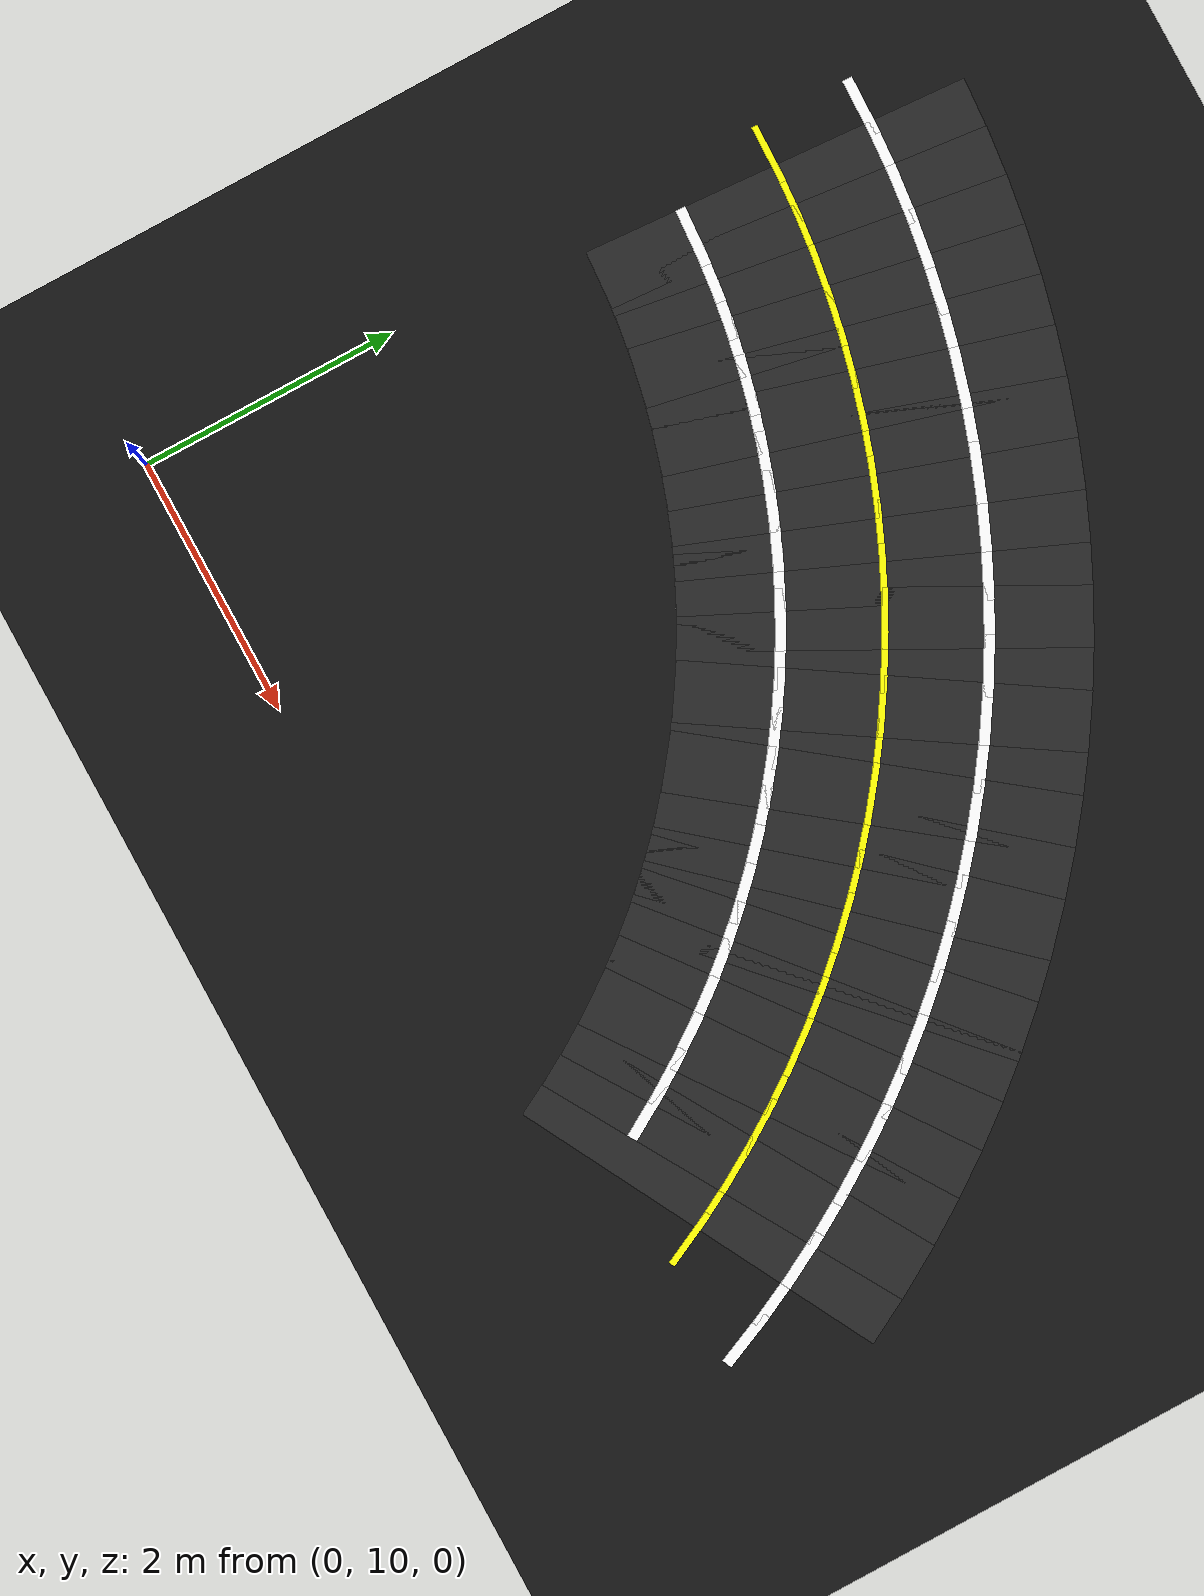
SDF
<sdf version="1.6">
 <world name="figure8_world">
  <model name="ground_plane">
   <static>true</static>
   <link name="link">
    <collision name="collision">
     <geometry><plane><normal>0 0 1</normal><size>100 100</size></plane></geometry>
    </collision>
    <visual name="visual">
     <geometry><plane><normal>0 0 1</normal><size>100 100</size></plane></geometry>
     <material><ambient>0.08 0.08 0.08 1</ambient><diffuse>0.08 0.08 0.08 1</diffuse></material>
    </visual>
   </link>
  </model>
  <model name="seg_00165">
   <static>true</static>
   <pose>7.5625 10.7972 0.0030 0 0 1.9819</pose>
   <link name="link">
    <collision name="collision"><geometry><box><size>0.4500 0.0800 0.002</size></box></geometry></collision>
    <visual name="visual">
     <geometry><box><size>0.4500 0.0800 0.002</size></box></geometry>
     <material><ambient>1 1 1 1</ambient><diffuse>1 1 1 1</diffuse></material>
    </visual>
   </link>
  </model>
  <model name="seg_00169">
   <static>true</static>
   <pose>7.4167 11.1131 0.0030 0 0 2.0241</pose>
   <link name="link">
    <collision name="collision"><geometry><box><size>0.4500 0.0800 0.002</size></box></geometry></collision>
    <visual name="visual">
     <geometry><box><size>0.4500 0.0800 0.002</size></box></geometry>
     <material><ambient>1 1 1 1</ambient><diffuse>1 1 1 1</diffuse></material>
    </visual>
   </link>
  </model>
  <model name="seg_00171">
   <static>true</static>
   <pose>6.7425 10.7846 0.0030 0 0 2.0241</pose>
   <link name="link">
    <collision name="collision"><geometry><box><size>0.4500 0.0500 0.002</size></box></geometry></collision>
    <visual name="visual">
     <geometry><box><size>0.4500 0.0500 0.002</size></box></geometry>
     <material><ambient>1 1 0 1</ambient><diffuse>1 1 0 1</diffuse></material>
    </visual>
   </link>
  </model>
  <model name="seg_00172">
   <static>true</static>
   <pose>6.5980 11.0659 0.0010 0 0 2.0663</pose>
   <link name="link">
    <collision name="collision"><geometry><box><size>0.4500 3.0000 0.002</size></box></geometry></collision>
    <visual name="visual">
     <geometry><box><size>0.4500 3.0000 0.002</size></box></geometry>
     <material><ambient>0.15 0.15 0.15 1</ambient><diffuse>0.15 0.15 0.15 1</diffuse></material>
    </visual>
   </link>
  </model>
  <model name="seg_00173">
   <static>true</static>
   <pose>7.2578 11.4225 0.0030 0 0 2.0663</pose>
   <link name="link">
    <collision name="collision"><geometry><box><size>0.4500 0.0800 0.002</size></box></geometry></collision>
    <visual name="visual">
     <geometry><box><size>0.4500 0.0800 0.002</size></box></geometry>
     <material><ambient>1 1 1 1</ambient><diffuse>1 1 1 1</diffuse></material>
    </visual>
   </link>
  </model>
  <model name="seg_00175">
   <static>true</static>
   <pose>6.5980 11.0659 0.0030 0 0 2.0663</pose>
   <link name="link">
    <collision name="collision"><geometry><box><size>0.4500 0.0500 0.002</size></box></geometry></collision>
    <visual name="visual">
     <geometry><box><size>0.4500 0.0500 0.002</size></box></geometry>
     <material><ambient>1 1 0 1</ambient><diffuse>1 1 0 1</diffuse></material>
    </visual>
   </link>
  </model>
  <model name="seg_00176">
   <static>true</static>
   <pose>6.4418 11.3409 0.0010 0 0 2.1085</pose>
   <link name="link">
    <collision name="collision"><geometry><box><size>0.4500 3.0000 0.002</size></box></geometry></collision>
    <visual name="visual">
     <geometry><box><size>0.4500 3.0000 0.002</size></box></geometry>
     <material><ambient>0.15 0.15 0.15 1</ambient><diffuse>0.15 0.15 0.15 1</diffuse></material>
    </visual>
   </link>
  </model>
  <model name="seg_00177">
   <static>true</static>
   <pose>7.0860 11.7250 0.0030 0 0 2.1085</pose>
   <link name="link">
    <collision name="collision"><geometry><box><size>0.4500 0.0800 0.002</size></box></geometry></collision>
    <visual name="visual">
     <geometry><box><size>0.4500 0.0800 0.002</size></box></geometry>
     <material><ambient>1 1 1 1</ambient><diffuse>1 1 1 1</diffuse></material>
    </visual>
   </link>
  </model>
  <model name="seg_00178">
   <static>true</static>
   <pose>5.7977 10.9568 0.0030 0 0 2.1085</pose>
   <link name="link">
    <collision name="collision"><geometry><box><size>0.4500 0.0800 0.002</size></box></geometry></collision>
    <visual name="visual">
     <geometry><box><size>0.4500 0.0800 0.002</size></box></geometry>
     <material><ambient>1 1 1 1</ambient><diffuse>1 1 1 1</diffuse></material>
    </visual>
   </link>
  </model>
  <model name="seg_00179">
   <static>true</static>
   <pose>6.4418 11.3409 0.0030 0 0 2.1085</pose>
   <link name="link">
    <collision name="collision"><geometry><box><size>0.4500 0.0500 0.002</size></box></geometry></collision>
    <visual name="visual">
     <geometry><box><size>0.4500 0.0500 0.002</size></box></geometry>
     <material><ambient>1 1 0 1</ambient><diffuse>1 1 0 1</diffuse></material>
    </visual>
   </link>
  </model>
  <model name="seg_00180">
   <static>true</static>
   <pose>6.2742 11.6091 0.0010 0 0 2.1506</pose>
   <link name="link">
    <collision name="collision"><geometry><box><size>0.4500 3.0000 0.002</size></box></geometry></collision>
    <visual name="visual">
     <geometry><box><size>0.4500 3.0000 0.002</size></box></geometry>
     <material><ambient>0.15 0.15 0.15 1</ambient><diffuse>0.15 0.15 0.15 1</diffuse></material>
    </visual>
   </link>
  </model>
  <model name="seg_00181">
   <static>true</static>
   <pose>6.9016 12.0200 0.0030 0 0 2.1506</pose>
   <link name="link">
    <collision name="collision"><geometry><box><size>0.4500 0.0800 0.002</size></box></geometry></collision>
    <visual name="visual">
     <geometry><box><size>0.4500 0.0800 0.002</size></box></geometry>
     <material><ambient>1 1 1 1</ambient><diffuse>1 1 1 1</diffuse></material>
    </visual>
   </link>
  </model>
  <model name="seg_00182">
   <static>true</static>
   <pose>5.6468 11.1982 0.0030 0 0 2.1506</pose>
   <link name="link">
    <collision name="collision"><geometry><box><size>0.4500 0.0800 0.002</size></box></geometry></collision>
    <visual name="visual">
     <geometry><box><size>0.4500 0.0800 0.002</size></box></geometry>
     <material><ambient>1 1 1 1</ambient><diffuse>1 1 1 1</diffuse></material>
    </visual>
   </link>
  </model>
  <model name="seg_00183">
   <static>true</static>
   <pose>6.2742 11.6091 0.0030 0 0 2.1506</pose>
   <link name="link">
    <collision name="collision"><geometry><box><size>0.4500 0.0500 0.002</size></box></geometry></collision>
    <visual name="visual">
     <geometry><box><size>0.4500 0.0500 0.002</size></box></geometry>
     <material><ambient>1 1 0 1</ambient><diffuse>1 1 0 1</diffuse></material>
    </visual>
   </link>
  </model>
  <model name="seg_00184">
   <static>true</static>
   <pose>6.0954 11.8699 0.0010 0 0 2.1928</pose>
   <link name="link">
    <collision name="collision"><geometry><box><size>0.4500 3.0000 0.002</size></box></geometry></collision>
    <visual name="visual">
     <geometry><box><size>0.4500 3.0000 0.002</size></box></geometry>
     <material><ambient>0.15 0.15 0.15 1</ambient><diffuse>0.15 0.15 0.15 1</diffuse></material>
    </visual>
   </link>
  </model>
  <model name="seg_00185">
   <static>true</static>
   <pose>6.7049 12.3069 0.0030 0 0 2.1928</pose>
   <link name="link">
    <collision name="collision"><geometry><box><size>0.4500 0.0800 0.002</size></box></geometry></collision>
    <visual name="visual">
     <geometry><box><size>0.4500 0.0800 0.002</size></box></geometry>
     <material><ambient>1 1 1 1</ambient><diffuse>1 1 1 1</diffuse></material>
    </visual>
   </link>
  </model>
  <model name="seg_00186">
   <static>true</static>
   <pose>5.4859 11.4329 0.0030 0 0 2.1928</pose>
   <link name="link">
    <collision name="collision"><geometry><box><size>0.4500 0.0800 0.002</size></box></geometry></collision>
    <visual name="visual">
     <geometry><box><size>0.4500 0.0800 0.002</size></box></geometry>
     <material><ambient>1 1 1 1</ambient><diffuse>1 1 1 1</diffuse></material>
    </visual>
   </link>
  </model>
  <model name="seg_00187">
   <static>true</static>
   <pose>6.0954 11.8699 0.0030 0 0 2.1928</pose>
   <link name="link">
    <collision name="collision"><geometry><box><size>0.4500 0.0500 0.002</size></box></geometry></collision>
    <visual name="visual">
     <geometry><box><size>0.4500 0.0500 0.002</size></box></geometry>
     <material><ambient>1 1 0 1</ambient><diffuse>1 1 0 1</diffuse></material>
    </visual>
   </link>
  </model>
  <model name="seg_00188">
   <static>true</static>
   <pose>5.9058 12.1230 0.0010 0 0 2.2350</pose>
   <link name="link">
    <collision name="collision"><geometry><box><size>0.4500 3.0000 0.002</size></box></geometry></collision>
    <visual name="visual">
     <geometry><box><size>0.4500 3.0000 0.002</size></box></geometry>
     <material><ambient>0.15 0.15 0.15 1</ambient><diffuse>0.15 0.15 0.15 1</diffuse></material>
    </visual>
   </link>
  </model>
  <model name="seg_00189">
   <static>true</static>
   <pose>6.4963 12.5853 0.0030 0 0 2.2350</pose>
   <link name="link">
    <collision name="collision"><geometry><box><size>0.4500 0.0800 0.002</size></box></geometry></collision>
    <visual name="visual">
     <geometry><box><size>0.4500 0.0800 0.002</size></box></geometry>
     <material><ambient>1 1 1 1</ambient><diffuse>1 1 1 1</diffuse></material>
    </visual>
   </link>
  </model>
  <model name="seg_00190">
   <static>true</static>
   <pose>5.3152 11.6607 0.0030 0 0 2.2350</pose>
   <link name="link">
    <collision name="collision"><geometry><box><size>0.4500 0.0800 0.002</size></box></geometry></collision>
    <visual name="visual">
     <geometry><box><size>0.4500 0.0800 0.002</size></box></geometry>
     <material><ambient>1 1 1 1</ambient><diffuse>1 1 1 1</diffuse></material>
    </visual>
   </link>
  </model>
  <model name="seg_00191">
   <static>true</static>
   <pose>5.9058 12.1230 0.0030 0 0 2.2350</pose>
   <link name="link">
    <collision name="collision"><geometry><box><size>0.4500 0.0500 0.002</size></box></geometry></collision>
    <visual name="visual">
     <geometry><box><size>0.4500 0.0500 0.002</size></box></geometry>
     <material><ambient>1 1 0 1</ambient><diffuse>1 1 0 1</diffuse></material>
    </visual>
   </link>
  </model>
  <model name="seg_00192">
   <static>true</static>
   <pose>5.7056 12.3679 0.0010 0 0 2.2771</pose>
   <link name="link">
    <collision name="collision"><geometry><box><size>0.4500 3.0000 0.002</size></box></geometry></collision>
    <visual name="visual">
     <geometry><box><size>0.4500 3.0000 0.002</size></box></geometry>
     <material><ambient>0.15 0.15 0.15 1</ambient><diffuse>0.15 0.15 0.15 1</diffuse></material>
    </visual>
   </link>
  </model>
  <model name="seg_00193">
   <static>true</static>
   <pose>6.2762 12.8546 0.0030 0 0 2.2771</pose>
   <link name="link">
    <collision name="collision"><geometry><box><size>0.4500 0.0800 0.002</size></box></geometry></collision>
    <visual name="visual">
     <geometry><box><size>0.4500 0.0800 0.002</size></box></geometry>
     <material><ambient>1 1 1 1</ambient><diffuse>1 1 1 1</diffuse></material>
    </visual>
   </link>
  </model>
  <model name="seg_00194">
   <static>true</static>
   <pose>5.1351 11.8811 0.0030 0 0 2.2771</pose>
   <link name="link">
    <collision name="collision"><geometry><box><size>0.4500 0.0800 0.002</size></box></geometry></collision>
    <visual name="visual">
     <geometry><box><size>0.4500 0.0800 0.002</size></box></geometry>
     <material><ambient>1 1 1 1</ambient><diffuse>1 1 1 1</diffuse></material>
    </visual>
   </link>
  </model>
  <model name="seg_00195">
   <static>true</static>
   <pose>5.7056 12.3679 0.0030 0 0 2.2771</pose>
   <link name="link">
    <collision name="collision"><geometry><box><size>0.4500 0.0500 0.002</size></box></geometry></collision>
    <visual name="visual">
     <geometry><box><size>0.4500 0.0500 0.002</size></box></geometry>
     <material><ambient>1 1 0 1</ambient><diffuse>1 1 0 1</diffuse></material>
    </visual>
   </link>
  </model>
  <model name="seg_00196">
   <static>true</static>
   <pose>5.4953 12.6041 0.0010 0 0 2.3193</pose>
   <link name="link">
    <collision name="collision"><geometry><box><size>0.4500 3.0000 0.002</size></box></geometry></collision>
    <visual name="visual">
     <geometry><box><size>0.4500 3.0000 0.002</size></box></geometry>
     <material><ambient>0.15 0.15 0.15 1</ambient><diffuse>0.15 0.15 0.15 1</diffuse></material>
    </visual>
   </link>
  </model>
  <model name="seg_00197">
   <static>true</static>
   <pose>6.0449 13.1145 0.0030 0 0 2.3193</pose>
   <link name="link">
    <collision name="collision"><geometry><box><size>0.4500 0.0800 0.002</size></box></geometry></collision>
    <visual name="visual">
     <geometry><box><size>0.4500 0.0800 0.002</size></box></geometry>
     <material><ambient>1 1 1 1</ambient><diffuse>1 1 1 1</diffuse></material>
    </visual>
   </link>
  </model>
  <model name="seg_00198">
   <static>true</static>
   <pose>4.9458 12.0936 0.0030 0 0 2.3193</pose>
   <link name="link">
    <collision name="collision"><geometry><box><size>0.4500 0.0800 0.002</size></box></geometry></collision>
    <visual name="visual">
     <geometry><box><size>0.4500 0.0800 0.002</size></box></geometry>
     <material><ambient>1 1 1 1</ambient><diffuse>1 1 1 1</diffuse></material>
    </visual>
   </link>
  </model>
  <model name="seg_00199">
   <static>true</static>
   <pose>5.4953 12.6041 0.0030 0 0 2.3193</pose>
   <link name="link">
    <collision name="collision"><geometry><box><size>0.4500 0.0500 0.002</size></box></geometry></collision>
    <visual name="visual">
     <geometry><box><size>0.4500 0.0500 0.002</size></box></geometry>
     <material><ambient>1 1 0 1</ambient><diffuse>1 1 0 1</diffuse></material>
    </visual>
   </link>
  </model>
  <model name="seg_00200">
   <static>true</static>
   <pose>5.2753 12.8312 0.0010 0 0 2.3615</pose>
   <link name="link">
    <collision name="collision"><geometry><box><size>0.4500 3.0000 0.002</size></box></geometry></collision>
    <visual name="visual">
     <geometry><box><size>0.4500 3.0000 0.002</size></box></geometry>
     <material><ambient>0.15 0.15 0.15 1</ambient><diffuse>0.15 0.15 0.15 1</diffuse></material>
    </visual>
   </link>
  </model>
  <model name="seg_00201">
   <static>true</static>
   <pose>5.8028 13.3643 0.0030 0 0 2.3615</pose>
   <link name="link">
    <collision name="collision"><geometry><box><size>0.4500 0.0800 0.002</size></box></geometry></collision>
    <visual name="visual">
     <geometry><box><size>0.4500 0.0800 0.002</size></box></geometry>
     <material><ambient>1 1 1 1</ambient><diffuse>1 1 1 1</diffuse></material>
    </visual>
   </link>
  </model>
  <model name="seg_00202">
   <static>true</static>
   <pose>4.7477 12.2981 0.0030 0 0 2.3615</pose>
   <link name="link">
    <collision name="collision"><geometry><box><size>0.4500 0.0800 0.002</size></box></geometry></collision>
    <visual name="visual">
     <geometry><box><size>0.4500 0.0800 0.002</size></box></geometry>
     <material><ambient>1 1 1 1</ambient><diffuse>1 1 1 1</diffuse></material>
    </visual>
   </link>
  </model>
  <model name="seg_00203">
   <static>true</static>
   <pose>5.2753 12.8312 0.0030 0 0 2.3615</pose>
   <link name="link">
    <collision name="collision"><geometry><box><size>0.4500 0.0500 0.002</size></box></geometry></collision>
    <visual name="visual">
     <geometry><box><size>0.4500 0.0500 0.002</size></box></geometry>
     <material><ambient>1 1 0 1</ambient><diffuse>1 1 0 1</diffuse></material>
    </visual>
   </link>
  </model>
  <model name="seg_00204">
   <static>true</static>
   <pose>5.0458 13.0488 0.0010 0 0 2.4036</pose>
   <link name="link">
    <collision name="collision"><geometry><box><size>0.4500 3.0000 0.002</size></box></geometry></collision>
    <visual name="visual">
     <geometry><box><size>0.4500 3.0000 0.002</size></box></geometry>
     <material><ambient>0.15 0.15 0.15 1</ambient><diffuse>0.15 0.15 0.15 1</diffuse></material>
    </visual>
   </link>
  </model>
  <model name="seg_00205">
   <static>true</static>
   <pose>5.5504 13.6037 0.0030 0 0 2.4036</pose>
   <link name="link">
    <collision name="collision"><geometry><box><size>0.4500 0.0800 0.002</size></box></geometry></collision>
    <visual name="visual">
     <geometry><box><size>0.4500 0.0800 0.002</size></box></geometry>
     <material><ambient>1 1 1 1</ambient><diffuse>1 1 1 1</diffuse></material>
    </visual>
   </link>
  </model>
  <model name="seg_00206">
   <static>true</static>
   <pose>4.5413 12.4939 0.0030 0 0 2.4036</pose>
   <link name="link">
    <collision name="collision"><geometry><box><size>0.4500 0.0800 0.002</size></box></geometry></collision>
    <visual name="visual">
     <geometry><box><size>0.4500 0.0800 0.002</size></box></geometry>
     <material><ambient>1 1 1 1</ambient><diffuse>1 1 1 1</diffuse></material>
    </visual>
   </link>
  </model>
  <model name="seg_00207">
   <static>true</static>
   <pose>5.0458 13.0488 0.0030 0 0 2.4036</pose>
   <link name="link">
    <collision name="collision"><geometry><box><size>0.4500 0.0500 0.002</size></box></geometry></collision>
    <visual name="visual">
     <geometry><box><size>0.4500 0.0500 0.002</size></box></geometry>
     <material><ambient>1 1 0 1</ambient><diffuse>1 1 0 1</diffuse></material>
    </visual>
   </link>
  </model>
  <model name="seg_00208">
   <static>true</static>
   <pose>4.8074 13.2566 0.0010 0 0 2.4458</pose>
   <link name="link">
    <collision name="collision"><geometry><box><size>0.4500 3.0000 0.002</size></box></geometry></collision>
    <visual name="visual">
     <geometry><box><size>0.4500 3.0000 0.002</size></box></geometry>
     <material><ambient>0.15 0.15 0.15 1</ambient><diffuse>0.15 0.15 0.15 1</diffuse></material>
    </visual>
   </link>
  </model>
  <model name="seg_00209">
   <static>true</static>
   <pose>5.2882 13.8323 0.0030 0 0 2.4458</pose>
   <link name="link">
    <collision name="collision"><geometry><box><size>0.4500 0.0800 0.002</size></box></geometry></collision>
    <visual name="visual">
     <geometry><box><size>0.4500 0.0800 0.002</size></box></geometry>
     <material><ambient>1 1 1 1</ambient><diffuse>1 1 1 1</diffuse></material>
    </visual>
   </link>
  </model>
  <model name="seg_00210">
   <static>true</static>
   <pose>4.3267 12.6810 0.0030 0 0 2.4458</pose>
   <link name="link">
    <collision name="collision"><geometry><box><size>0.4500 0.0800 0.002</size></box></geometry></collision>
    <visual name="visual">
     <geometry><box><size>0.4500 0.0800 0.002</size></box></geometry>
     <material><ambient>1 1 1 1</ambient><diffuse>1 1 1 1</diffuse></material>
    </visual>
   </link>
  </model>
  <model name="seg_00211">
   <static>true</static>
   <pose>4.8074 13.2566 0.0030 0 0 2.4458</pose>
   <link name="link">
    <collision name="collision"><geometry><box><size>0.4500 0.0500 0.002</size></box></geometry></collision>
    <visual name="visual">
     <geometry><box><size>0.4500 0.0500 0.002</size></box></geometry>
     <material><ambient>1 1 0 1</ambient><diffuse>1 1 0 1</diffuse></material>
    </visual>
   </link>
  </model>
  <model name="seg_00212">
   <static>true</static>
   <pose>4.5605 13.4542 0.0010 0 0 2.4880</pose>
   <link name="link">
    <collision name="collision"><geometry><box><size>0.4500 3.0000 0.002</size></box></geometry></collision>
    <visual name="visual">
     <geometry><box><size>0.4500 3.0000 0.002</size></box></geometry>
     <material><ambient>0.15 0.15 0.15 1</ambient><diffuse>0.15 0.15 0.15 1</diffuse></material>
    </visual>
   </link>
  </model>
  <model name="seg_00213">
   <static>true</static>
   <pose>5.0165 14.0496 0.0030 0 0 2.4880</pose>
   <link name="link">
    <collision name="collision"><geometry><box><size>0.4500 0.0800 0.002</size></box></geometry></collision>
    <visual name="visual">
     <geometry><box><size>0.4500 0.0800 0.002</size></box></geometry>
     <material><ambient>1 1 1 1</ambient><diffuse>1 1 1 1</diffuse></material>
    </visual>
   </link>
  </model>
  <model name="seg_00214">
   <static>true</static>
   <pose>4.1044 12.8587 0.0030 0 0 2.4880</pose>
   <link name="link">
    <collision name="collision"><geometry><box><size>0.4500 0.0800 0.002</size></box></geometry></collision>
    <visual name="visual">
     <geometry><box><size>0.4500 0.0800 0.002</size></box></geometry>
     <material><ambient>1 1 1 1</ambient><diffuse>1 1 1 1</diffuse></material>
    </visual>
   </link>
  </model>
  <model name="seg_00215">
   <static>true</static>
   <pose>4.5605 13.4542 0.0030 0 0 2.4880</pose>
   <link name="link">
    <collision name="collision"><geometry><box><size>0.4500 0.0500 0.002</size></box></geometry></collision>
    <visual name="visual">
     <geometry><box><size>0.4500 0.0500 0.002</size></box></geometry>
     <material><ambient>1 1 0 1</ambient><diffuse>1 1 0 1</diffuse></material>
    </visual>
   </link>
  </model>
  <model name="seg_00216">
   <static>true</static>
   <pose>4.3054 13.6411 0.0010 0 0 2.5301</pose>
   <link name="link">
    <collision name="collision"><geometry><box><size>0.4500 3.0000 0.002</size></box></geometry></collision>
    <visual name="visual">
     <geometry><box><size>0.4500 3.0000 0.002</size></box></geometry>
     <material><ambient>0.15 0.15 0.15 1</ambient><diffuse>0.15 0.15 0.15 1</diffuse></material>
    </visual>
   </link>
  </model>
  <model name="seg_00217">
   <static>true</static>
   <pose>4.7360 14.2552 0.0030 0 0 2.5301</pose>
   <link name="link">
    <collision name="collision"><geometry><box><size>0.4500 0.0800 0.002</size></box></geometry></collision>
    <visual name="visual">
     <geometry><box><size>0.4500 0.0800 0.002</size></box></geometry>
     <material><ambient>1 1 1 1</ambient><diffuse>1 1 1 1</diffuse></material>
    </visual>
   </link>
  </model>
  <model name="seg_00218">
   <static>true</static>
   <pose>3.8749 13.0270 0.0030 0 0 2.5301</pose>
   <link name="link">
    <collision name="collision"><geometry><box><size>0.4500 0.0800 0.002</size></box></geometry></collision>
    <visual name="visual">
     <geometry><box><size>0.4500 0.0800 0.002</size></box></geometry>
     <material><ambient>1 1 1 1</ambient><diffuse>1 1 1 1</diffuse></material>
    </visual>
   </link>
  </model>
  <model name="seg_00219">
   <static>true</static>
   <pose>4.3054 13.6411 0.0030 0 0 2.5301</pose>
   <link name="link">
    <collision name="collision"><geometry><box><size>0.4500 0.0500 0.002</size></box></geometry></collision>
    <visual name="visual">
     <geometry><box><size>0.4500 0.0500 0.002</size></box></geometry>
     <material><ambient>1 1 0 1</ambient><diffuse>1 1 0 1</diffuse></material>
    </visual>
   </link>
  </model>
  <model name="seg_00220">
   <static>true</static>
   <pose>4.0427 13.8172 0.0010 0 0 2.5723</pose>
   <link name="link">
    <collision name="collision"><geometry><box><size>0.4500 3.0000 0.002</size></box></geometry></collision>
    <visual name="visual">
     <geometry><box><size>0.4500 3.0000 0.002</size></box></geometry>
     <material><ambient>0.15 0.15 0.15 1</ambient><diffuse>0.15 0.15 0.15 1</diffuse></material>
    </visual>
   </link>
  </model>
  <model name="seg_00221">
   <static>true</static>
   <pose>4.4470 14.4489 0.0030 0 0 2.5723</pose>
   <link name="link">
    <collision name="collision"><geometry><box><size>0.4500 0.0800 0.002</size></box></geometry></collision>
    <visual name="visual">
     <geometry><box><size>0.4500 0.0800 0.002</size></box></geometry>
     <material><ambient>1 1 1 1</ambient><diffuse>1 1 1 1</diffuse></material>
    </visual>
   </link>
  </model>
  <model name="seg_00222">
   <static>true</static>
   <pose>3.6384 13.1854 0.0030 0 0 2.5723</pose>
   <link name="link">
    <collision name="collision"><geometry><box><size>0.4500 0.0800 0.002</size></box></geometry></collision>
    <visual name="visual">
     <geometry><box><size>0.4500 0.0800 0.002</size></box></geometry>
     <material><ambient>1 1 1 1</ambient><diffuse>1 1 1 1</diffuse></material>
    </visual>
   </link>
  </model>
  <model name="seg_00223">
   <static>true</static>
   <pose>4.0427 13.8172 0.0030 0 0 2.5723</pose>
   <link name="link">
    <collision name="collision"><geometry><box><size>0.4500 0.0500 0.002</size></box></geometry></collision>
    <visual name="visual">
     <geometry><box><size>0.4500 0.0500 0.002</size></box></geometry>
     <material><ambient>1 1 0 1</ambient><diffuse>1 1 0 1</diffuse></material>
    </visual>
   </link>
  </model>
  <model name="seg_00224">
   <static>true</static>
   <pose>3.7728 13.9820 0.0010 0 0 2.6145</pose>
   <link name="link">
    <collision name="collision"><geometry><box><size>0.4500 3.0000 0.002</size></box></geometry></collision>
    <visual name="visual">
     <geometry><box><size>0.4500 3.0000 0.002</size></box></geometry>
     <material><ambient>0.15 0.15 0.15 1</ambient><diffuse>0.15 0.15 0.15 1</diffuse></material>
    </visual>
   </link>
  </model>
  <model name="seg_00225">
   <static>true</static>
   <pose>4.1501 14.6302 0.0030 0 0 2.6145</pose>
   <link name="link">
    <collision name="collision"><geometry><box><size>0.4500 0.0800 0.002</size></box></geometry></collision>
    <visual name="visual">
     <geometry><box><size>0.4500 0.0800 0.002</size></box></geometry>
     <material><ambient>1 1 1 1</ambient><diffuse>1 1 1 1</diffuse></material>
    </visual>
   </link>
  </model>
  <model name="seg_00226">
   <static>true</static>
   <pose>3.3955 13.3338 0.0030 0 0 2.6145</pose>
   <link name="link">
    <collision name="collision"><geometry><box><size>0.4500 0.0800 0.002</size></box></geometry></collision>
    <visual name="visual">
     <geometry><box><size>0.4500 0.0800 0.002</size></box></geometry>
     <material><ambient>1 1 1 1</ambient><diffuse>1 1 1 1</diffuse></material>
    </visual>
   </link>
  </model>
  <model name="seg_00227">
   <static>true</static>
   <pose>3.7728 13.9820 0.0030 0 0 2.6145</pose>
   <link name="link">
    <collision name="collision"><geometry><box><size>0.4500 0.0500 0.002</size></box></geometry></collision>
    <visual name="visual">
     <geometry><box><size>0.4500 0.0500 0.002</size></box></geometry>
     <material><ambient>1 1 0 1</ambient><diffuse>1 1 0 1</diffuse></material>
    </visual>
   </link>
  </model>
  <model name="seg_00228">
   <static>true</static>
   <pose>3.4962 14.1353 0.0010 0 0 2.6566</pose>
   <link name="link">
    <collision name="collision"><geometry><box><size>0.4500 3.0000 0.002</size></box></geometry></collision>
    <visual name="visual">
     <geometry><box><size>0.4500 3.0000 0.002</size></box></geometry>
     <material><ambient>0.15 0.15 0.15 1</ambient><diffuse>0.15 0.15 0.15 1</diffuse></material>
    </visual>
   </link>
  </model>
  <model name="seg_00229">
   <static>true</static>
   <pose>3.8458 14.7988 0.0030 0 0 2.6566</pose>
   <link name="link">
    <collision name="collision"><geometry><box><size>0.4500 0.0800 0.002</size></box></geometry></collision>
    <visual name="visual">
     <geometry><box><size>0.4500 0.0800 0.002</size></box></geometry>
     <material><ambient>1 1 1 1</ambient><diffuse>1 1 1 1</diffuse></material>
    </visual>
   </link>
  </model>
  <model name="seg_00230">
   <static>true</static>
   <pose>3.1466 13.4717 0.0030 0 0 2.6566</pose>
   <link name="link">
    <collision name="collision"><geometry><box><size>0.4500 0.0800 0.002</size></box></geometry></collision>
    <visual name="visual">
     <geometry><box><size>0.4500 0.0800 0.002</size></box></geometry>
     <material><ambient>1 1 1 1</ambient><diffuse>1 1 1 1</diffuse></material>
    </visual>
   </link>
  </model>
  <model name="seg_00231">
   <static>true</static>
   <pose>3.4962 14.1353 0.0030 0 0 2.6566</pose>
   <link name="link">
    <collision name="collision"><geometry><box><size>0.4500 0.0500 0.002</size></box></geometry></collision>
    <visual name="visual">
     <geometry><box><size>0.4500 0.0500 0.002</size></box></geometry>
     <material><ambient>1 1 0 1</ambient><diffuse>1 1 0 1</diffuse></material>
    </visual>
   </link>
  </model>
  <model name="seg_00232">
   <static>true</static>
   <pose>3.2134 14.2767 0.0010 0 0 2.6988</pose>
   <link name="link">
    <collision name="collision"><geometry><box><size>0.4500 3.0000 0.002</size></box></geometry></collision>
    <visual name="visual">
     <geometry><box><size>0.4500 3.0000 0.002</size></box></geometry>
     <material><ambient>0.15 0.15 0.15 1</ambient><diffuse>0.15 0.15 0.15 1</diffuse></material>
    </visual>
   </link>
  </model>
  <model name="seg_00233">
   <static>true</static>
   <pose>3.5347 14.9544 0.0030 0 0 2.6988</pose>
   <link name="link">
    <collision name="collision"><geometry><box><size>0.4500 0.0800 0.002</size></box></geometry></collision>
    <visual name="visual">
     <geometry><box><size>0.4500 0.0800 0.002</size></box></geometry>
     <material><ambient>1 1 1 1</ambient><diffuse>1 1 1 1</diffuse></material>
    </visual>
   </link>
  </model>
  <model name="seg_00234">
   <static>true</static>
   <pose>2.8920 13.5991 0.0030 0 0 2.6988</pose>
   <link name="link">
    <collision name="collision"><geometry><box><size>0.4500 0.0800 0.002</size></box></geometry></collision>
    <visual name="visual">
     <geometry><box><size>0.4500 0.0800 0.002</size></box></geometry>
     <material><ambient>1 1 1 1</ambient><diffuse>1 1 1 1</diffuse></material>
    </visual>
   </link>
  </model>
  <model name="seg_00235">
   <static>true</static>
   <pose>3.2134 14.2767 0.0030 0 0 2.6988</pose>
   <link name="link">
    <collision name="collision"><geometry><box><size>0.4500 0.0500 0.002</size></box></geometry></collision>
    <visual name="visual">
     <geometry><box><size>0.4500 0.0500 0.002</size></box></geometry>
     <material><ambient>1 1 0 1</ambient><diffuse>1 1 0 1</diffuse></material>
    </visual>
   </link>
  </model>
  <model name="seg_00236">
   <static>true</static>
   <pose>2.9248 14.4062 0.0010 0 0 2.7410</pose>
   <link name="link">
    <collision name="collision"><geometry><box><size>0.4500 3.0000 0.002</size></box></geometry></collision>
    <visual name="visual">
     <geometry><box><size>0.4500 3.0000 0.002</size></box></geometry>
     <material><ambient>0.15 0.15 0.15 1</ambient><diffuse>0.15 0.15 0.15 1</diffuse></material>
    </visual>
   </link>
  </model>
  <model name="seg_00237">
   <static>true</static>
   <pose>3.2173 15.0968 0.0030 0 0 2.7410</pose>
   <link name="link">
    <collision name="collision"><geometry><box><size>0.4500 0.0800 0.002</size></box></geometry></collision>
    <visual name="visual">
     <geometry><box><size>0.4500 0.0800 0.002</size></box></geometry>
     <material><ambient>1 1 1 1</ambient><diffuse>1 1 1 1</diffuse></material>
    </visual>
   </link>
  </model>
  <model name="seg_00238">
   <static>true</static>
   <pose>2.6323 13.7156 0.0030 0 0 2.7410</pose>
   <link name="link">
    <collision name="collision"><geometry><box><size>0.4500 0.0800 0.002</size></box></geometry></collision>
    <visual name="visual">
     <geometry><box><size>0.4500 0.0800 0.002</size></box></geometry>
     <material><ambient>1 1 1 1</ambient><diffuse>1 1 1 1</diffuse></material>
    </visual>
   </link>
  </model>
  <model name="seg_00239">
   <static>true</static>
   <pose>2.9248 14.4062 0.0030 0 0 2.7410</pose>
   <link name="link">
    <collision name="collision"><geometry><box><size>0.4500 0.0500 0.002</size></box></geometry></collision>
    <visual name="visual">
     <geometry><box><size>0.4500 0.0500 0.002</size></box></geometry>
     <material><ambient>1 1 0 1</ambient><diffuse>1 1 0 1</diffuse></material>
    </visual>
   </link>
  </model>
  <model name="seg_00240">
   <static>true</static>
   <pose>2.6311 14.5233 0.0010 0 0 2.7832</pose>
   <link name="link">
    <collision name="collision"><geometry><box><size>0.4500 3.0000 0.002</size></box></geometry></collision>
    <visual name="visual">
     <geometry><box><size>0.4500 3.0000 0.002</size></box></geometry>
     <material><ambient>0.15 0.15 0.15 1</ambient><diffuse>0.15 0.15 0.15 1</diffuse></material>
    </visual>
   </link>
  </model>
  <model name="seg_00241">
   <static>true</static>
   <pose>2.8942 15.2257 0.0030 0 0 2.7832</pose>
   <link name="link">
    <collision name="collision"><geometry><box><size>0.4500 0.0800 0.002</size></box></geometry></collision>
    <visual name="visual">
     <geometry><box><size>0.4500 0.0800 0.002</size></box></geometry>
     <material><ambient>1 1 1 1</ambient><diffuse>1 1 1 1</diffuse></material>
    </visual>
   </link>
  </model>
  <model name="seg_00242">
   <static>true</static>
   <pose>2.3680 13.8210 0.0030 0 0 2.7832</pose>
   <link name="link">
    <collision name="collision"><geometry><box><size>0.4500 0.0800 0.002</size></box></geometry></collision>
    <visual name="visual">
     <geometry><box><size>0.4500 0.0800 0.002</size></box></geometry>
     <material><ambient>1 1 1 1</ambient><diffuse>1 1 1 1</diffuse></material>
    </visual>
   </link>
  </model>
  <model name="seg_00243">
   <static>true</static>
   <pose>2.6311 14.5233 0.0030 0 0 2.7832</pose>
   <link name="link">
    <collision name="collision"><geometry><box><size>0.4500 0.0500 0.002</size></box></geometry></collision>
    <visual name="visual">
     <geometry><box><size>0.4500 0.0500 0.002</size></box></geometry>
     <material><ambient>1 1 0 1</ambient><diffuse>1 1 0 1</diffuse></material>
    </visual>
   </link>
  </model>
  <model name="seg_00244">
   <static>true</static>
   <pose>2.3327 14.6280 0.0010 0 0 2.8253</pose>
   <link name="link">
    <collision name="collision"><geometry><box><size>0.4500 3.0000 0.002</size></box></geometry></collision>
    <visual name="visual">
     <geometry><box><size>0.4500 3.0000 0.002</size></box></geometry>
     <material><ambient>0.15 0.15 0.15 1</ambient><diffuse>0.15 0.15 0.15 1</diffuse></material>
    </visual>
   </link>
  </model>
  <model name="seg_00245">
   <static>true</static>
   <pose>2.5659 15.3408 0.0030 0 0 2.8253</pose>
   <link name="link">
    <collision name="collision"><geometry><box><size>0.4500 0.0800 0.002</size></box></geometry></collision>
    <visual name="visual">
     <geometry><box><size>0.4500 0.0800 0.002</size></box></geometry>
     <material><ambient>1 1 1 1</ambient><diffuse>1 1 1 1</diffuse></material>
    </visual>
   </link>
  </model>
  <model name="seg_00246">
   <static>true</static>
   <pose>2.0994 13.9152 0.0030 0 0 2.8253</pose>
   <link name="link">
    <collision name="collision"><geometry><box><size>0.4500 0.0800 0.002</size></box></geometry></collision>
    <visual name="visual">
     <geometry><box><size>0.4500 0.0800 0.002</size></box></geometry>
     <material><ambient>1 1 1 1</ambient><diffuse>1 1 1 1</diffuse></material>
    </visual>
   </link>
  </model>
  <model name="seg_00247">
   <static>true</static>
   <pose>2.3327 14.6280 0.0030 0 0 2.8253</pose>
   <link name="link">
    <collision name="collision"><geometry><box><size>0.4500 0.0500 0.002</size></box></geometry></collision>
    <visual name="visual">
     <geometry><box><size>0.4500 0.0500 0.002</size></box></geometry>
     <material><ambient>1 1 0 1</ambient><diffuse>1 1 0 1</diffuse></material>
    </visual>
   </link>
  </model>
  <model name="seg_00248">
   <static>true</static>
   <pose>2.0301 14.7200 0.0010 0 0 2.8675</pose>
   <link name="link">
    <collision name="collision"><geometry><box><size>0.4500 3.0000 0.002</size></box></geometry></collision>
    <visual name="visual">
     <geometry><box><size>0.4500 3.0000 0.002</size></box></geometry>
     <material><ambient>0.15 0.15 0.15 1</ambient><diffuse>0.15 0.15 0.15 1</diffuse></material>
    </visual>
   </link>
  </model>
  <model name="seg_00249">
   <static>true</static>
   <pose>2.2331 15.4420 0.0030 0 0 2.8675</pose>
   <link name="link">
    <collision name="collision"><geometry><box><size>0.4500 0.0800 0.002</size></box></geometry></collision>
    <visual name="visual">
     <geometry><box><size>0.4500 0.0800 0.002</size></box></geometry>
     <material><ambient>1 1 1 1</ambient><diffuse>1 1 1 1</diffuse></material>
    </visual>
   </link>
  </model>
  <model name="seg_00250">
   <static>true</static>
   <pose>1.8271 13.9980 0.0030 0 0 2.8675</pose>
   <link name="link">
    <collision name="collision"><geometry><box><size>0.4500 0.0800 0.002</size></box></geometry></collision>
    <visual name="visual">
     <geometry><box><size>0.4500 0.0800 0.002</size></box></geometry>
     <material><ambient>1 1 1 1</ambient><diffuse>1 1 1 1</diffuse></material>
    </visual>
   </link>
  </model>
  <model name="seg_00251">
   <static>true</static>
   <pose>2.0301 14.7200 0.0030 0 0 2.8675</pose>
   <link name="link">
    <collision name="collision"><geometry><box><size>0.4500 0.0500 0.002</size></box></geometry></collision>
    <visual name="visual">
     <geometry><box><size>0.4500 0.0500 0.002</size></box></geometry>
     <material><ambient>1 1 0 1</ambient><diffuse>1 1 0 1</diffuse></material>
    </visual>
   </link>
  </model>
  <model name="seg_00252">
   <static>true</static>
   <pose>1.7239 14.7992 0.0010 0 0 2.9097</pose>
   <link name="link">
    <collision name="collision"><geometry><box><size>0.4500 3.0000 0.002</size></box></geometry></collision>
    <visual name="visual">
     <geometry><box><size>0.4500 3.0000 0.002</size></box></geometry>
     <material><ambient>0.15 0.15 0.15 1</ambient><diffuse>0.15 0.15 0.15 1</diffuse></material>
    </visual>
   </link>
  </model>
  <model name="seg_00253">
   <static>true</static>
   <pose>1.8963 15.5291 0.0030 0 0 2.9097</pose>
   <link name="link">
    <collision name="collision"><geometry><box><size>0.4500 0.0800 0.002</size></box></geometry></collision>
    <visual name="visual">
     <geometry><box><size>0.4500 0.0800 0.002</size></box></geometry>
     <material><ambient>1 1 1 1</ambient><diffuse>1 1 1 1</diffuse></material>
    </visual>
   </link>
  </model>
  <model name="seg_00254">
   <static>true</static>
   <pose>1.5515 14.0693 0.0030 0 0 2.9097</pose>
   <link name="link">
    <collision name="collision"><geometry><box><size>0.4500 0.0800 0.002</size></box></geometry></collision>
    <visual name="visual">
     <geometry><box><size>0.4500 0.0800 0.002</size></box></geometry>
     <material><ambient>1 1 1 1</ambient><diffuse>1 1 1 1</diffuse></material>
    </visual>
   </link>
  </model>
  <model name="seg_00255">
   <static>true</static>
   <pose>1.7239 14.7992 0.0030 0 0 2.9097</pose>
   <link name="link">
    <collision name="collision"><geometry><box><size>0.4500 0.0500 0.002</size></box></geometry></collision>
    <visual name="visual">
     <geometry><box><size>0.4500 0.0500 0.002</size></box></geometry>
     <material><ambient>1 1 0 1</ambient><diffuse>1 1 0 1</diffuse></material>
    </visual>
   </link>
  </model>
  <model name="seg_00256">
   <static>true</static>
   <pose>1.4147 14.8654 0.0010 0 0 2.9518</pose>
   <link name="link">
    <collision name="collision"><geometry><box><size>0.4500 3.0000 0.002</size></box></geometry></collision>
    <visual name="visual">
     <geometry><box><size>0.4500 3.0000 0.002</size></box></geometry>
     <material><ambient>0.15 0.15 0.15 1</ambient><diffuse>0.15 0.15 0.15 1</diffuse></material>
    </visual>
   </link>
  </model>
  <model name="seg_00257">
   <static>true</static>
   <pose>1.5561 15.6019 0.0030 0 0 2.9518</pose>
   <link name="link">
    <collision name="collision"><geometry><box><size>0.4500 0.0800 0.002</size></box></geometry></collision>
    <visual name="visual">
     <geometry><box><size>0.4500 0.0800 0.002</size></box></geometry>
     <material><ambient>1 1 1 1</ambient><diffuse>1 1 1 1</diffuse></material>
    </visual>
   </link>
  </model>
  <model name="seg_00258">
   <static>true</static>
   <pose>1.2732 14.1288 0.0030 0 0 2.9518</pose>
   <link name="link">
    <collision name="collision"><geometry><box><size>0.4500 0.0800 0.002</size></box></geometry></collision>
    <visual name="visual">
     <geometry><box><size>0.4500 0.0800 0.002</size></box></geometry>
     <material><ambient>1 1 1 1</ambient><diffuse>1 1 1 1</diffuse></material>
    </visual>
   </link>
  </model>
  <model name="seg_00259">
   <static>true</static>
   <pose>1.4147 14.8654 0.0030 0 0 2.9518</pose>
   <link name="link">
    <collision name="collision"><geometry><box><size>0.4500 0.0500 0.002</size></box></geometry></collision>
    <visual name="visual">
     <geometry><box><size>0.4500 0.0500 0.002</size></box></geometry>
     <material><ambient>1 1 0 1</ambient><diffuse>1 1 0 1</diffuse></material>
    </visual>
   </link>
  </model>
  <model name="seg_00260">
   <static>true</static>
   <pose>1.1029 14.9185 0.0010 0 0 2.9940</pose>
   <link name="link">
    <collision name="collision"><geometry><box><size>0.4500 3.0000 0.002</size></box></geometry></collision>
    <visual name="visual">
     <geometry><box><size>0.4500 3.0000 0.002</size></box></geometry>
     <material><ambient>0.15 0.15 0.15 1</ambient><diffuse>0.15 0.15 0.15 1</diffuse></material>
    </visual>
   </link>
  </model>
  <model name="seg_00261">
   <static>true</static>
   <pose>1.2132 15.6603 0.0030 0 0 2.9940</pose>
   <link name="link">
    <collision name="collision"><geometry><box><size>0.4500 0.0800 0.002</size></box></geometry></collision>
    <visual name="visual">
     <geometry><box><size>0.4500 0.0800 0.002</size></box></geometry>
     <material><ambient>1 1 1 1</ambient><diffuse>1 1 1 1</diffuse></material>
    </visual>
   </link>
  </model>
  <model name="seg_00262">
   <static>true</static>
   <pose>0.9926 14.1766 0.0030 0 0 2.9940</pose>
   <link name="link">
    <collision name="collision"><geometry><box><size>0.4500 0.0800 0.002</size></box></geometry></collision>
    <visual name="visual">
     <geometry><box><size>0.4500 0.0800 0.002</size></box></geometry>
     <material><ambient>1 1 1 1</ambient><diffuse>1 1 1 1</diffuse></material>
    </visual>
   </link>
  </model>
  <model name="seg_00263">
   <static>true</static>
   <pose>1.1029 14.9185 0.0030 0 0 2.9940</pose>
   <link name="link">
    <collision name="collision"><geometry><box><size>0.4500 0.0500 0.002</size></box></geometry></collision>
    <visual name="visual">
     <geometry><box><size>0.4500 0.0500 0.002</size></box></geometry>
     <material><ambient>1 1 0 1</ambient><diffuse>1 1 0 1</diffuse></material>
    </visual>
   </link>
  </model>
  <model name="seg_00264">
   <static>true</static>
   <pose>0.7892 14.9584 0.0010 0 0 3.0362</pose>
   <link name="link">
    <collision name="collision"><geometry><box><size>0.4500 3.0000 0.002</size></box></geometry></collision>
    <visual name="visual">
     <geometry><box><size>0.4500 3.0000 0.002</size></box></geometry>
     <material><ambient>0.15 0.15 0.15 1</ambient><diffuse>0.15 0.15 0.15 1</diffuse></material>
    </visual>
   </link>
  </model>
  <model name="seg_00265">
   <static>true</static>
   <pose>0.8681 15.7042 0.0030 0 0 3.0362</pose>
   <link name="link">
    <collision name="collision"><geometry><box><size>0.4500 0.0800 0.002</size></box></geometry></collision>
    <visual name="visual">
     <geometry><box><size>0.4500 0.0800 0.002</size></box></geometry>
     <material><ambient>1 1 1 1</ambient><diffuse>1 1 1 1</diffuse></material>
    </visual>
   </link>
  </model>
  <model name="seg_00266">
   <static>true</static>
   <pose>0.7103 14.2125 0.0030 0 0 3.0362</pose>
   <link name="link">
    <collision name="collision"><geometry><box><size>0.4500 0.0800 0.002</size></box></geometry></collision>
    <visual name="visual">
     <geometry><box><size>0.4500 0.0800 0.002</size></box></geometry>
     <material><ambient>1 1 1 1</ambient><diffuse>1 1 1 1</diffuse></material>
    </visual>
   </link>
  </model>
  <model name="seg_00267">
   <static>true</static>
   <pose>0.7892 14.9584 0.0030 0 0 3.0362</pose>
   <link name="link">
    <collision name="collision"><geometry><box><size>0.4500 0.0500 0.002</size></box></geometry></collision>
    <visual name="visual">
     <geometry><box><size>0.4500 0.0500 0.002</size></box></geometry>
     <material><ambient>1 1 0 1</ambient><diffuse>1 1 0 1</diffuse></material>
    </visual>
   </link>
  </model>
  <model name="seg_00268">
   <static>true</static>
   <pose>0.4741 14.9850 0.0010 0 0 3.0783</pose>
   <link name="link">
    <collision name="collision"><geometry><box><size>0.4500 3.0000 0.002</size></box></geometry></collision>
    <visual name="visual">
     <geometry><box><size>0.4500 3.0000 0.002</size></box></geometry>
     <material><ambient>0.15 0.15 0.15 1</ambient><diffuse>0.15 0.15 0.15 1</diffuse></material>
    </visual>
   </link>
  </model>
  <model name="seg_00269">
   <static>true</static>
   <pose>0.5215 15.7335 0.0030 0 0 3.0783</pose>
   <link name="link">
    <collision name="collision"><geometry><box><size>0.4500 0.0800 0.002</size></box></geometry></collision>
    <visual name="visual">
     <geometry><box><size>0.4500 0.0800 0.002</size></box></geometry>
     <material><ambient>1 1 1 1</ambient><diffuse>1 1 1 1</diffuse></material>
    </visual>
   </link>
  </model>
  <model name="seg_00270">
   <static>true</static>
   <pose>0.4267 14.2365 0.0030 0 0 3.0783</pose>
   <link name="link">
    <collision name="collision"><geometry><box><size>0.4500 0.0800 0.002</size></box></geometry></collision>
    <visual name="visual">
     <geometry><box><size>0.4500 0.0800 0.002</size></box></geometry>
     <material><ambient>1 1 1 1</ambient><diffuse>1 1 1 1</diffuse></material>
    </visual>
   </link>
  </model>
  <model name="seg_00271">
   <static>true</static>
   <pose>0.4741 14.9850 0.0030 0 0 3.0783</pose>
   <link name="link">
    <collision name="collision"><geometry><box><size>0.4500 0.0500 0.002</size></box></geometry></collision>
    <visual name="visual">
     <geometry><box><size>0.4500 0.0500 0.002</size></box></geometry>
     <material><ambient>1 1 0 1</ambient><diffuse>1 1 0 1</diffuse></material>
    </visual>
   </link>
  </model>
  <model name="seg_00273">
   <static>true</static>
   <pose>0.1739 15.7482 0.0030 0 0 3.1205</pose>
   <link name="link">
    <collision name="collision"><geometry><box><size>0.4500 0.0800 0.002</size></box></geometry></collision>
    <visual name="visual">
     <geometry><box><size>0.4500 0.0800 0.002</size></box></geometry>
     <material><ambient>1 1 1 1</ambient><diffuse>1 1 1 1</diffuse></material>
    </visual>
   </link>
  </model>
  <model name="seg_00275">
   <static>true</static>
   <pose>0.1581 14.9983 0.0030 0 0 3.1205</pose>
   <link name="link">
    <collision name="collision"><geometry><box><size>0.4500 0.0500 0.002</size></box></geometry></collision>
    <visual name="visual">
     <geometry><box><size>0.4500 0.0500 0.002</size></box></geometry>
     <material><ambient>1 1 0 1</ambient><diffuse>1 1 0 1</diffuse></material>
    </visual>
   </link>
  </model>
 </world>
</sdf>
